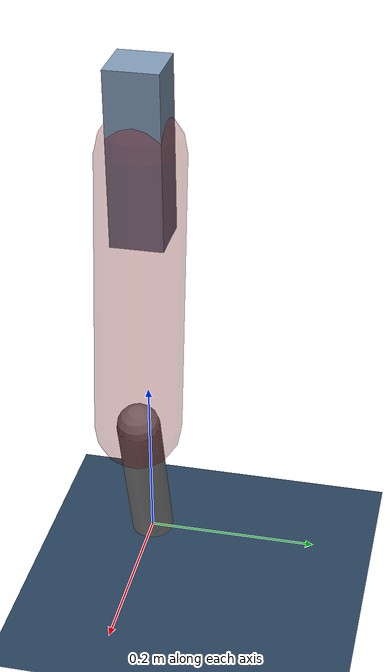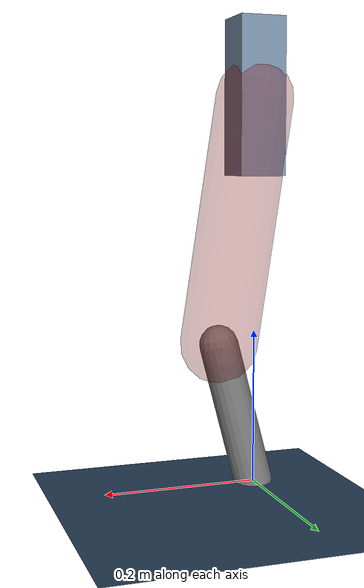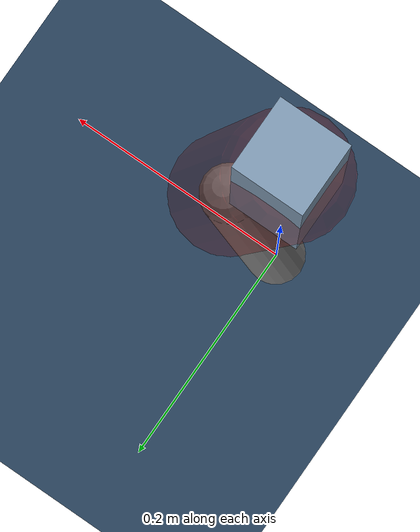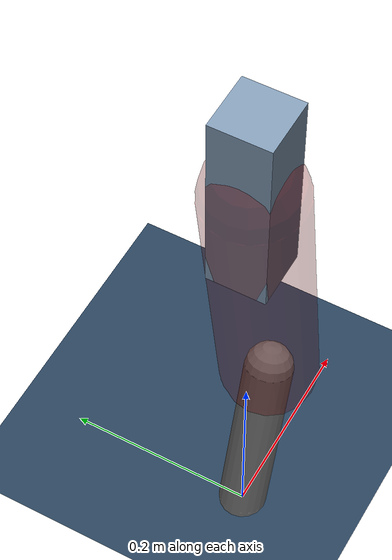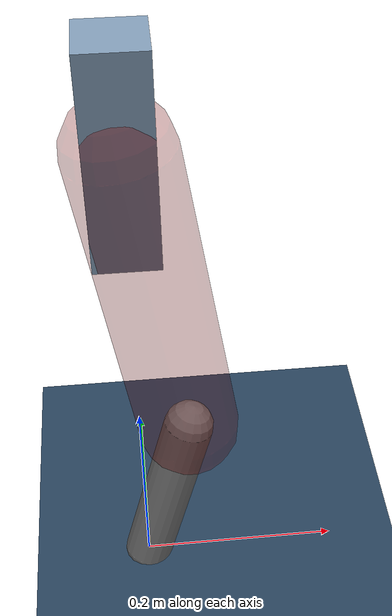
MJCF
<mujoco model="Hopper2D">
	<compiler inertiafromgeom="true" angle="radian" />
	<option timestep="0.001" integrator="implicit" cone="elliptic" solver="Newton" tolerance="1e-10" />

	<default>
		<geom contype="1" conaffinity="1" condim="3" friction="2 0.005 0.0001" solref="0.005 1" />
		<joint limited="true" damping="0.1" />
	</default>

	<asset>
		<texture name="skybox" type="skybox" builtin="gradient" rgb1=".4 .6 .8" rgb2="0 0 0" width="800" height="800" />
		<texture name="grid" type="2d" builtin="checker" rgb1=".1 .2 .3" rgb2=".2 .3 .4" width="300" height="300" mark="edge" markrgb=".2 .3 .4" />
		<material name="ground" texture="grid" texrepeat="1 1" texuniform="true" reflectance="0.1" />
		<material name="leg" rgba="0.5 0.6 0.7 1" />
	</asset>

	<worldbody>

		<geom name="floor" type="plane" size="5 5 0.25" material="ground" />

		<light directional="false" diffuse="0.8 0.8 0.8" specular="0.3 0.3 0.3" pos="0 0 2" dir="0 0 -1" />
		<light mode="targetbodycom" target="base" directional="false" diffuse="0.8 0.8 0.8" specular="0.3 0.3 0.3" pos="0 0 2" dir="0 0 -1" />

		<camera name="fixed" pos="0 -2 1" xyaxes="1 0 0 0 0 1" />
		<camera name="tracking" mode="trackcom" pos="0 -3 1" />

		<body name="root" pos="0 0 0.5008253567107619">
			<joint name="slide_x" type="slide" axis="1 0 0" range="-100 100" />
			<joint name="slide_z" type="slide" axis="0 0 1" range="0 10" />

			<body name="base" pos="0 0 0">
				<geom name="torso" type="box" size="0.03 0.03 0.1" mass="2.4240000000000004" material="leg" />

				<body name="link1" pos="0 0 0" euler="0 1.4186773817325076 0">
					<joint type="hinge" axis="0 -1 0" pos="0 0 0" name="hinge1" limited="true" range="-3.14 3.14" stiffness="0" damping="0.1" />
					<geom name="thigh" type="capsule" fromto="0 0 0 0.32047877989414814 0 0" size="0.05" rgba="0.5 0 0 0.3" mass="1.0445405837036148" />

					<body name="link2" pos="0.32047877989414814 0 0" euler="0 0.41010094219311216 0">
						<joint type="hinge" axis="0 -1 0" pos="0 0 0" name="hinge2" limited="true" range="-3.14 3.14" stiffness="0" damping="0.1" />
						<geom name="shank" type="capsule" fromto="0 0 0 0.1903465768166138 0 0" size="0.025" mass="0.3927119191349524" />

					</body>
				</body>
			</body>
		</body>
	</worldbody>

	<actuator>
		<motor name="torque1" joint="hinge1" ctrlrange="-70.79205521825227 70.79205521825227" ctrllimited="true" gear="1" />
		<motor name="torque2" joint="hinge2" ctrlrange="-101.79720958672863 101.79720958672863" ctrllimited="true" gear="1" />
	</actuator>
</mujoco>
